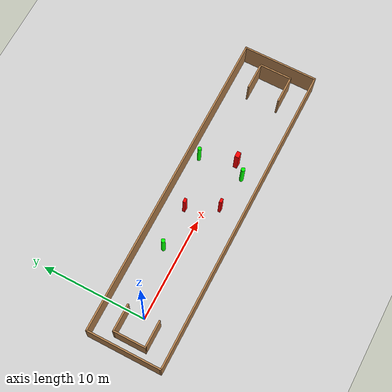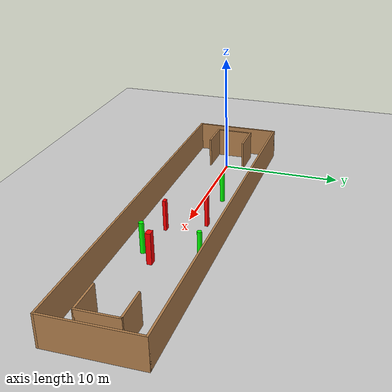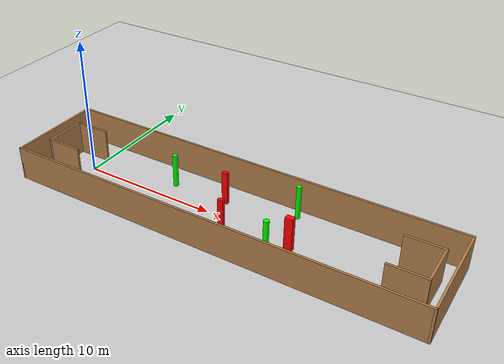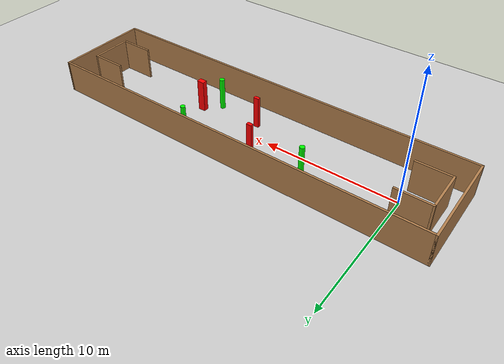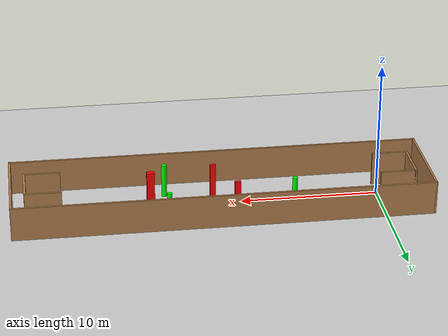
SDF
<sdf version="1.7">
 <world name="default">
  <light name="sun" type="directional">
   <pose>0 0 10 0 -0 0</pose>
   <diffuse>0.8 0.8 0.8 1</diffuse>
   <specular>0.2 0.2 0.2 1</specular>
   <attenuation>
    <range>1000</range>
    <constant>0.9</constant>
    <linear>0.01</linear>
    <quadratic>0.001</quadratic>
   </attenuation>
   <direction>-0.5 0.1 -0.9</direction>
   <spot><inner_angle>0</inner_angle><outer_angle>0</outer_angle><falloff>0</falloff></spot>
  </light>
  <model name="ground_plane">
   <static>1</static>
   <link name="link">
    <collision name="collision">
     <geometry><plane><normal>0 0 1</normal><size>100 100</size></plane></geometry>
     <surface>
      <contact><collide_bitmask>65535</collide_bitmask></contact>
      <friction><ode><mu>100</mu><mu2>50</mu2></ode></friction>
     </surface>
    </collision>
    <visual name="visual">
     <cast_shadows>0</cast_shadows>
     <geometry><plane><normal>0 0 1</normal><size>100 100</size></plane></geometry>
     <material>
      <script><uri>file://media/materials/scripts/gazebo.material</uri><name>Gazebo/Grey</name></script>
     </material>
    </visual>
   </link>
  </model>
  <gravity>0 0 -9.8</gravity>
  <magnetic_field>6e-06 2.3e-05 -4.2e-05</magnetic_field>
  <atmosphere type="adiabatic"/>
  <physics type="ode">
   <max_step_size>0.001</max_step_size>
   <real_time_factor>1</real_time_factor>
   <real_time_update_rate>1000</real_time_update_rate>
  </physics>
  <scene><ambient>0.4 0.4 0.4 1</ambient><background>0.7 0.7 0.7 1</background><shadows>1</shadows></scene>
  <spherical_coordinates>
   <surface_model>EARTH_WGS84</surface_model>
   <latitude_deg>0</latitude_deg>
   <longitude_deg>0</longitude_deg>
   <elevation>0</elevation>
   <heading_deg>0</heading_deg>
  </spherical_coordinates>
  <model name="my_base_walls">
   <link name="Wall_0">
    <collision name="Wall_0_Collision">
     <geometry><box><size>7.15 0.15 2.5</size></box></geometry>
     <pose>0 0 1.25 0 -0 0</pose>
    </collision>
    <visual name="Wall_0_Visual">
     <pose>0 0 1.25 0 -0 0</pose>
     <geometry><box><size>7.15 0.15 2.5</size></box></geometry>
     <material>
      <script><uri>file://media/materials/scripts/gazebo.material</uri><name>Gazebo/Wood</name></script>
      <ambient>1 1 1 1</ambient>
     </material>
     <meta><layer>0</layer></meta>
    </visual>
    <pose>-15 0 0 0 -0 1.5708</pose>
   </link>
   <link name="Wall_10">
    <collision name="Wall_10_Collision">
     <geometry><box><size>2.65 0.15 2.5</size></box></geometry>
     <pose>0 0 1.25 0 -0 0</pose>
    </collision>
    <visual name="Wall_10_Visual">
     <pose>0 0 1.25 0 -0 0</pose>
     <geometry><box><size>2.65 0.15 2.5</size></box></geometry>
     <material>
      <script><uri>file://media/materials/scripts/gazebo.material</uri><name>Gazebo/Wood</name></script>
      <ambient>1 1 1 1</ambient>
     </material>
     <meta><layer>0</layer></meta>
    </visual>
    <pose>-12.75 -1.5 0 0 -0 0</pose>
   </link>
   <link name="Wall_12">
    <collision name="Wall_12_Collision">
     <geometry><box><size>2.65 0.15 2.5</size></box></geometry>
     <pose>0 0 1.25 0 -0 0</pose>
    </collision>
    <visual name="Wall_12_Visual">
     <pose>0 0 1.25 0 -0 0</pose>
     <geometry><box><size>2.65 0.15 2.5</size></box></geometry>
     <material>
      <script><uri>file://media/materials/scripts/gazebo.material</uri><name>Gazebo/Wood</name></script>
      <ambient>1 1 1 1</ambient>
     </material>
     <meta><layer>0</layer></meta>
    </visual>
    <pose>-12.75 1.5 0 0 -0 0</pose>
   </link>
   <link name="Wall_14">
    <collision name="Wall_14_Collision">
     <geometry><box><size>3.15 0.15 2.5</size></box></geometry>
     <pose>0 0 1.25 0 -0 0</pose>
    </collision>
    <visual name="Wall_14_Visual">
     <pose>0 0 1.25 0 -0 0</pose>
     <geometry><box><size>3.15 0.15 2.5</size></box></geometry>
     <material>
      <script><uri>file://media/materials/scripts/gazebo.material</uri><name>Gazebo/Wood</name></script>
      <ambient>1 1 1 1</ambient>
     </material>
     <meta><layer>0</layer></meta>
    </visual>
    <pose>14 0 0 0 -0 -1.5708</pose>
   </link>
   <link name="Wall_15">
    <collision name="Wall_15_Collision">
     <geometry><box><size>2.65 0.15 2.5</size></box></geometry>
     <pose>0 0 1.25 0 -0 0</pose>
    </collision>
    <visual name="Wall_15_Visual">
     <pose>0 0 1.25 0 -0 0</pose>
     <geometry><box><size>2.65 0.15 2.5</size></box></geometry>
     <material>
      <script><uri>file://media/materials/scripts/gazebo.material</uri><name>Gazebo/Wood</name></script>
      <ambient>1 1 1 1</ambient>
     </material>
     <meta><layer>0</layer></meta>
    </visual>
    <pose>12.75 -1.5 0 0 -0 3.14159</pose>
   </link>
   <link name="Wall_17">
    <collision name="Wall_17_Collision">
     <geometry><box><size>2.65 0.15 2.5</size></box></geometry>
     <pose>0 0 1.25 0 -0 0</pose>
    </collision>
    <visual name="Wall_17_Visual">
     <pose>0 0 1.25 0 -0 0</pose>
     <geometry><box><size>2.65 0.15 2.5</size></box></geometry>
     <material>
      <script><uri>file://media/materials/scripts/gazebo.material</uri><name>Gazebo/Wood</name></script>
      <ambient>1 1 1 1</ambient>
     </material>
     <meta><layer>0</layer></meta>
    </visual>
    <pose>12.75 1.5 0 0 -0 3.14159</pose>
   </link>
   <link name="Wall_2">
    <collision name="Wall_2_Collision">
     <geometry><box><size>30.15 0.15 2.5</size></box></geometry>
     <pose>0 0 1.25 0 -0 0</pose>
    </collision>
    <visual name="Wall_2_Visual">
     <pose>0 0 1.25 0 -0 0</pose>
     <geometry><box><size>30.15 0.15 2.5</size></box></geometry>
     <material>
      <script><uri>file://media/materials/scripts/gazebo.material</uri><name>Gazebo/Wood</name></script>
      <ambient>1 1 1 1</ambient>
     </material>
     <meta><layer>0</layer></meta>
    </visual>
    <pose>-0 -3.5 0 0 -0 0</pose>
   </link>
   <link name="Wall_4">
    <collision name="Wall_4_Collision">
     <geometry><box><size>30.15 0.15 2.5</size></box></geometry>
     <pose>0 0 1.25 0 -0 0</pose>
    </collision>
    <visual name="Wall_4_Visual">
     <pose>0 0 1.25 0 -0 0</pose>
     <geometry><box><size>30.15 0.15 2.5</size></box></geometry>
     <material>
      <script><uri>file://media/materials/scripts/gazebo.material</uri><name>Gazebo/Wood</name></script>
      <ambient>1 1 1 1</ambient>
     </material>
     <meta><layer>0</layer></meta>
    </visual>
    <pose>-0 3.5 0 0 -0 0</pose>
   </link>
   <link name="Wall_6">
    <collision name="Wall_6_Collision">
     <geometry><box><size>7.15 0.15 2.5</size></box></geometry>
     <pose>0 0 1.25 0 -0 0</pose>
    </collision>
    <visual name="Wall_6_Visual">
     <pose>0 0 1.25 0 -0 0</pose>
     <geometry><box><size>7.15 0.15 2.5</size></box></geometry>
     <material>
      <script><uri>file://media/materials/scripts/gazebo.material</uri><name>Gazebo/Wood</name></script>
      <ambient>1 1 1 1</ambient>
     </material>
     <meta><layer>0</layer></meta>
    </visual>
    <pose>15 0 0 0 -0 -1.5708</pose>
   </link>
   <link name="Wall_9">
    <collision name="Wall_9_Collision">
     <geometry><box><size>3.15 0.15 2.5</size></box></geometry>
     <pose>0 0 1.25 0 -0 0</pose>
    </collision>
    <visual name="Wall_9_Visual">
     <pose>0 0 1.25 0 -0 0</pose>
     <geometry><box><size>3.15 0.15 2.5</size></box></geometry>
     <material>
      <script><uri>file://media/materials/scripts/gazebo.material</uri><name>Gazebo/Wood</name></script>
      <ambient>1 1 1 1</ambient>
     </material>
     <meta><layer>0</layer></meta>
    </visual>
    <pose>-14 0 0 0 -0 -1.5708</pose>
   </link>
   <static>1</static>
   <pose>11.5 0 0 0 -0 0</pose>
  </model>
  <model name="cylinder1">
   <static>1</static>
   <link name="link">
    <inertial>
     <mass>1</mass>
     <inertia><ixx>0.5</ixx><ixy>0</ixy><ixz>0</ixz><iyy>0.5</iyy><iyz>0</iyz><izz>1</izz></inertia>
    </inertial>
    <collision name="collision">
     <geometry><cylinder><radius>0.18968999436263168</radius><length>2.5</length></cylinder></geometry>
    </collision>
    <visual name="visual">
     <geometry><cylinder><radius>0.18968999436263168</radius><length>2.5</length></cylinder></geometry>
     <material>
      <ambient>0 1 0 1</ambient>
      <diffuse>0 1 0 1</diffuse>
      <specular>0.1 0.1 0.1 1</specular>
      <emissive>0 0 0 0</emissive>
     </material>
    </visual>
   </link>
   <pose>6.3269041298163256 1.5185234700244 1.25 0 0 0</pose>
  </model>
  <model name="cylinder2">
   <static>1</static>
   <link name="link">
    <inertial>
     <mass>1</mass>
     <inertia><ixx>0.5</ixx><ixy>0</ixy><ixz>0</ixz><iyy>0.5</iyy><iyz>0</iyz><izz>1</izz></inertia>
    </inertial>
    <collision name="collision">
     <geometry><cylinder><radius>0.17367390068377284</radius><length>2.5</length></cylinder></geometry>
    </collision>
    <visual name="visual">
     <geometry><cylinder><radius>0.17367390068377284</radius><length>2.5</length></cylinder></geometry>
     <material>
      <ambient>0 1 0 1</ambient>
      <diffuse>0 1 0 1</diffuse>
      <specular>0.1 0.1 0.1 1</specular>
      <emissive>0 0 0 0</emissive>
     </material>
    </visual>
   </link>
   <pose>15.433256301187654 2.6759730738036396 1.25 0 0 0</pose>
  </model>
  <model name="cylinder3">
   <static>1</static>
   <link name="link">
    <inertial>
     <mass>1</mass>
     <inertia><ixx>0.5</ixx><ixy>0</ixy><ixz>0</ixz><iyy>0.5</iyy><iyz>0</iyz><izz>1</izz></inertia>
    </inertial>
    <collision name="collision">
     <geometry><cylinder><radius>0.19179609629185418</radius><length>2.5</length></cylinder></geometry>
    </collision>
    <visual name="visual">
     <geometry><cylinder><radius>0.19179609629185418</radius><length>2.5</length></cylinder></geometry>
     <material>
      <ambient>0 1 0 1</ambient>
      <diffuse>0 1 0 1</diffuse>
      <specular>0.1 0.1 0.1 1</specular>
      <emissive>0 0 0 0</emissive>
     </material>
    </visual>
   </link>
   <pose>15.415706184639344 -1.6476588997171246 1.25 0 0 0</pose>
  </model>
  <model name="box1">
   <static>1</static>
   <link name="link">
    <inertial>
     <mass>1</mass>
     <inertia><ixx>0.083</ixx><ixy>0</ixy><ixz>0</ixz><iyy>0.083</iyy><iyz>0</iyz><izz>0.083</izz></inertia>
    </inertial>
    <collision name="collision">
     <geometry><box><size>0.41163063624046525 0.24225554029943616 2.5</size></box></geometry>
    </collision>
    <visual name="visual">
     <geometry><box><size>0.41163063624046525 0.24225554029943616 2.5</size></box></geometry>
     <material>
      <ambient>1 0 0 1</ambient>
      <diffuse>1 0 0 1</diffuse>
      <specular>0.1 0.1 0.1 1</specular>
      <emissive>0 0 0 0</emissive>
     </material>
    </visual>
    <sensor name="my_contact" type="contact">
     <contact><collision>box_collision</collision><topic>__default_topic__</topic></contact>
    </sensor>
   </link>
   <pose>11.909600509338373 -1.2526459073169933 1.25 0 0 0</pose>
  </model>
  <model name="box2">
   <static>1</static>
   <link name="link">
    <inertial>
     <mass>1</mass>
     <inertia><ixx>0.083</ixx><ixy>0</ixy><ixz>0</ixz><iyy>0.083</iyy><iyz>0</iyz><izz>0.083</izz></inertia>
    </inertial>
    <collision name="collision">
     <geometry><box><size>0.4074725185802852 0.2541522454687515 2.5</size></box></geometry>
    </collision>
    <visual name="visual">
     <geometry><box><size>0.4074725185802852 0.2541522454687515 2.5</size></box></geometry>
     <material>
      <ambient>1 0 0 1</ambient>
      <diffuse>1 0 0 1</diffuse>
      <specular>0.1 0.1 0.1 1</specular>
      <emissive>0 0 0 0</emissive>
     </material>
    </visual>
    <sensor name="my_contact" type="contact">
     <contact><collision>box_collision</collision><topic>__default_topic__</topic></contact>
    </sensor>
   </link>
   <pose>10.455382719630023 1.5578428377320135 1.25 0 0 0</pose>
  </model>
  <model name="box3">
   <static>1</static>
   <link name="link">
    <inertial>
     <mass>1</mass>
     <inertia><ixx>0.083</ixx><ixy>0</ixy><ixz>0</ixz><iyy>0.083</iyy><iyz>0</iyz><izz>0.083</izz></inertia>
    </inertial>
    <collision name="collision">
     <geometry><box><size>0.5548169668770051 0.3924967602221202 2.5</size></box></geometry>
    </collision>
    <visual name="visual">
     <geometry><box><size>0.5548169668770051 0.3924967602221202 2.5</size></box></geometry>
     <material>
      <ambient>1 0 0 1</ambient>
      <diffuse>1 0 0 1</diffuse>
      <specular>0.1 0.1 0.1 1</specular>
      <emissive>0 0 0 0</emissive>
     </material>
    </visual>
    <sensor name="my_contact" type="contact">
     <contact><collision>box_collision</collision><topic>__default_topic__</topic></contact>
    </sensor>
   </link>
   <pose>16.484664833349953 -0.6098294968654465 1.25 0 0 0</pose>
  </model>
 </world>
</sdf>
